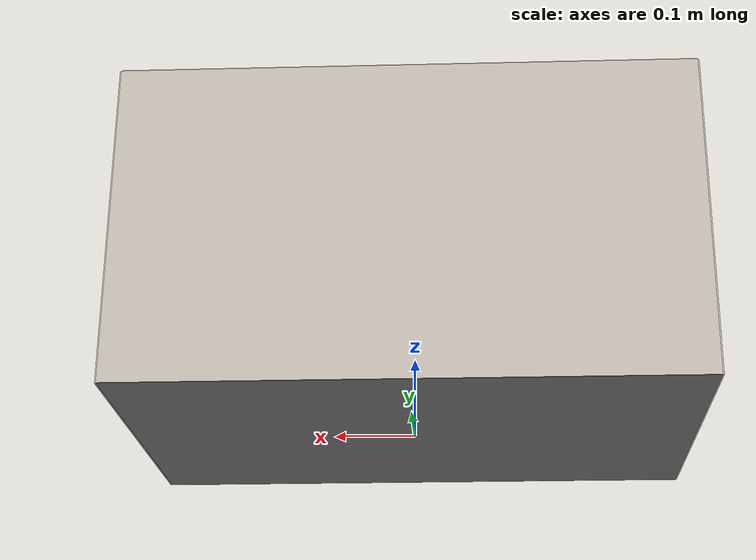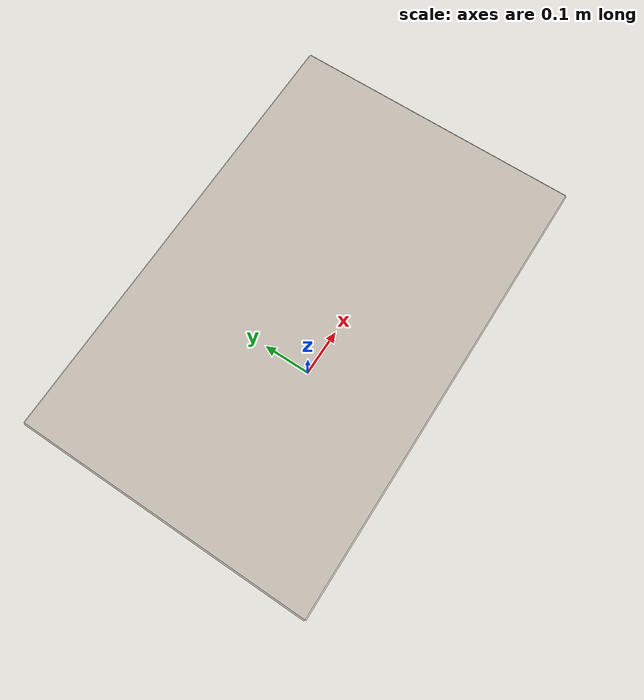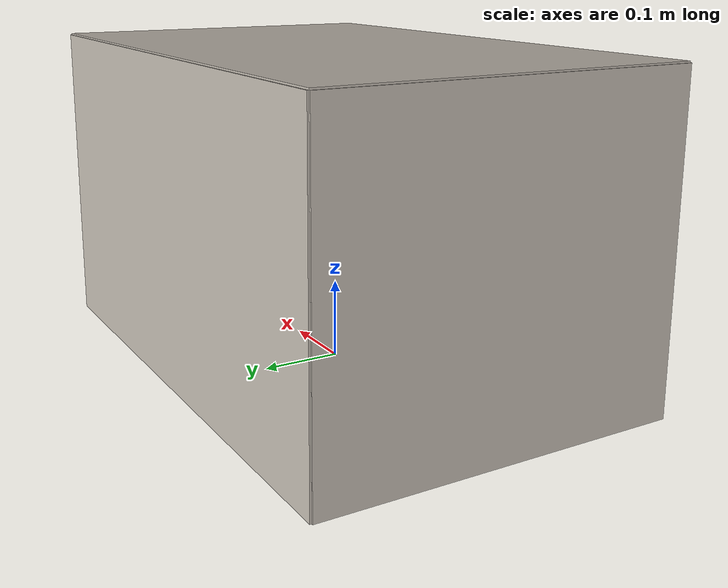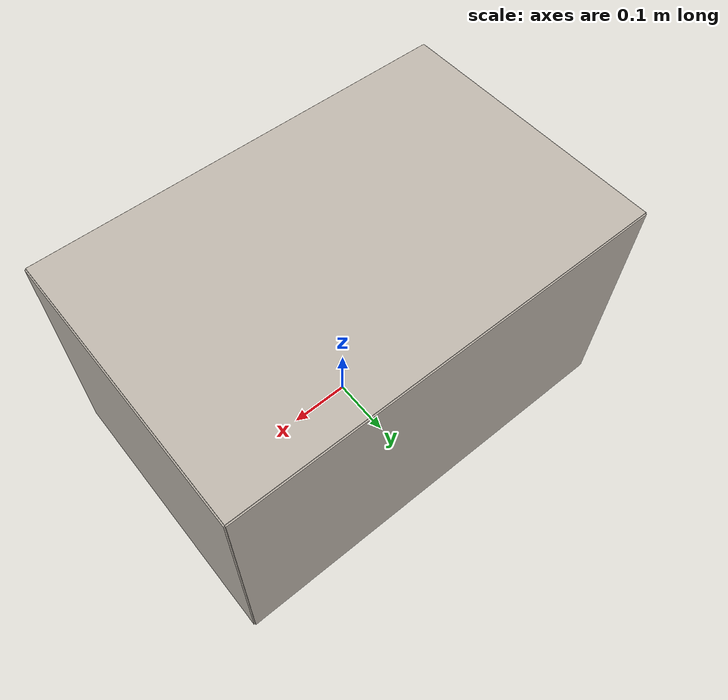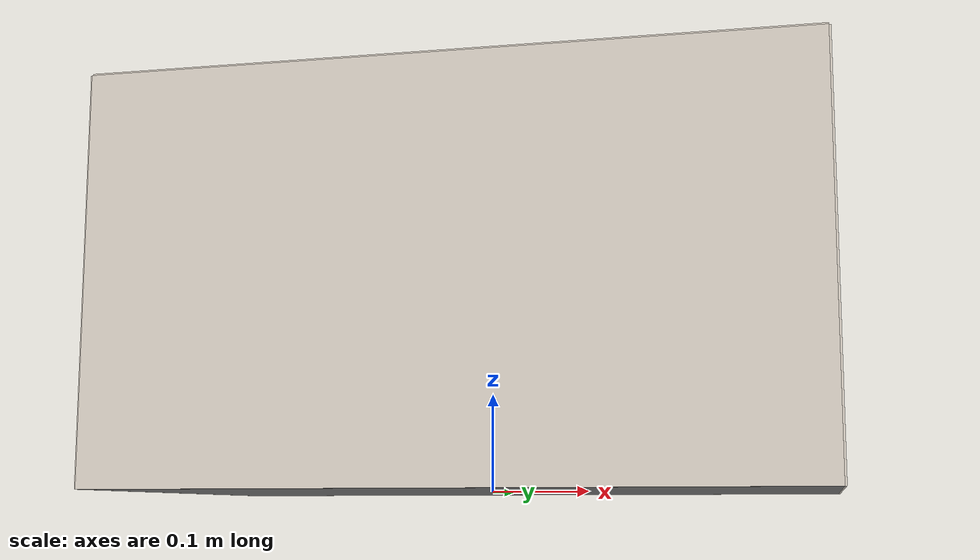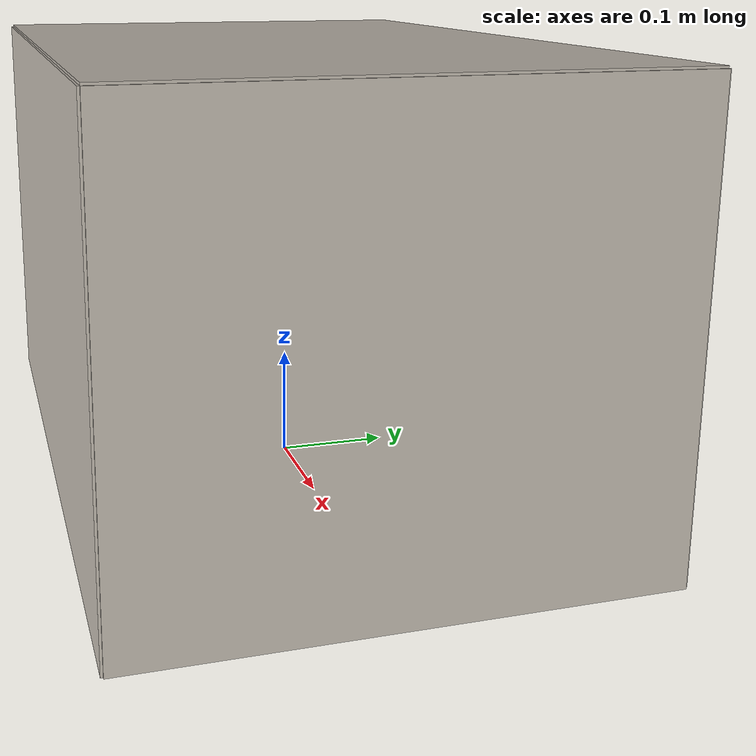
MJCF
<mujoco model="chest">

    <asset>
        <texture
            name="chest_top_texture"
            type="2d"
            file="../assets/chest/top.png"
            colorspace="sRGB"
        />

        <texture
            name="chest_long_side_texture"
            type="2d"
            file="../assets/chest/long_side.png"
            colorspace="linear"
        />

        <texture
            name="chest_side_texture"
            type="2d"
            file="../assets/chest/side.png"
            colorspace="linear"
        />

        <material
            name="chest_top_material"
            texture="chest_top_texture"
            texrepeat="1 1"
            specular="0"
        />

        <material
            name="chest_long_side_material"
            texture="chest_long_side_texture"
            texrepeat="1 1"
            rgba="1 1 1 1"
            specular="0"
            shininess="0"
        />

        <material
            name="chest_side_material"
            texture="chest_side_texture"
            texrepeat="1 1"
            rgba="1 1 1 1"
            specular="0"
            shininess="0"
        />
    </asset>

    <worldbody>
        <body name="chest" pos="0 0 0.2">

            <geom
                name="chest_body"
                type="box"
                size="0.35 0.225 0.20"
                rgba="0.5 0.5 0.5 1"
            />

            <geom
                name="chest_top"
                type="box"
                size="0.225 0.35 0.001"
                pos="0 0 0.201"
                euler="0 0 90"
                material="chest_top_material"
                contype="0"
                conaffinity="0"
            />

            <geom
                name="chest_long_side_1"
                type="box"
                size="0.35 0.001 0.20"
                pos="0 0.226 0"
                material="chest_long_side_material"
                contype="0"
                conaffinity="0"
            />

            <geom
                name="chest_long_side_2"
                type="box"
                size="0.35 0.001 0.20"
                pos="0 -0.226 0"
                material="chest_long_side_material"
                contype="0"
                conaffinity="0"
            />

            <geom
                name="chest_side_1"
                type="box"
                size="0.001 0.225 0.20"
                pos="0.351 0 0"
                material="chest_side_material"
                contype="0"
                conaffinity="0"
            />

            <geom
                name="chest_side_2"
                type="box"
                size="0.001 0.225 0.20"
                pos="-0.351 0 0"
                material="chest_side_material"
                contype="0"
                conaffinity="0"
            />

        </body>
    </worldbody>

</mujoco>
